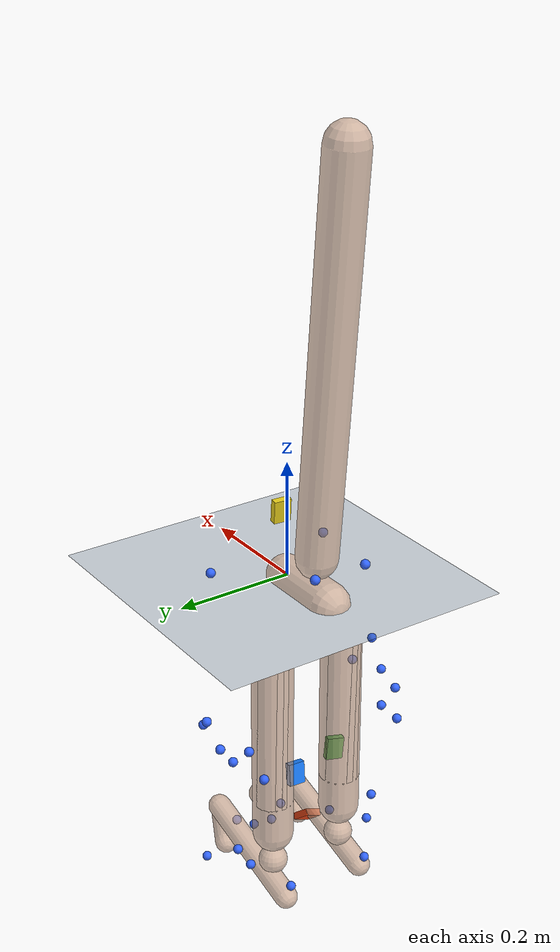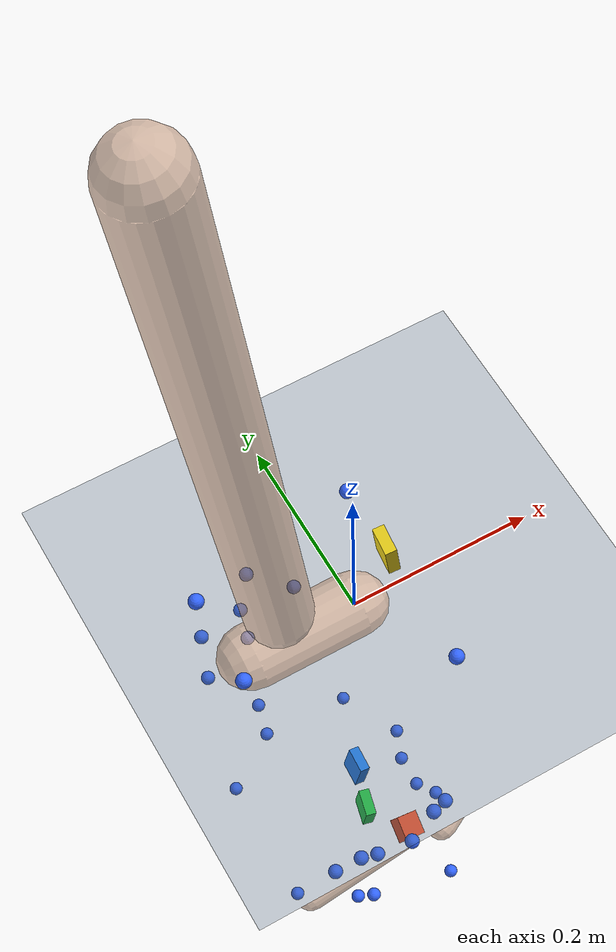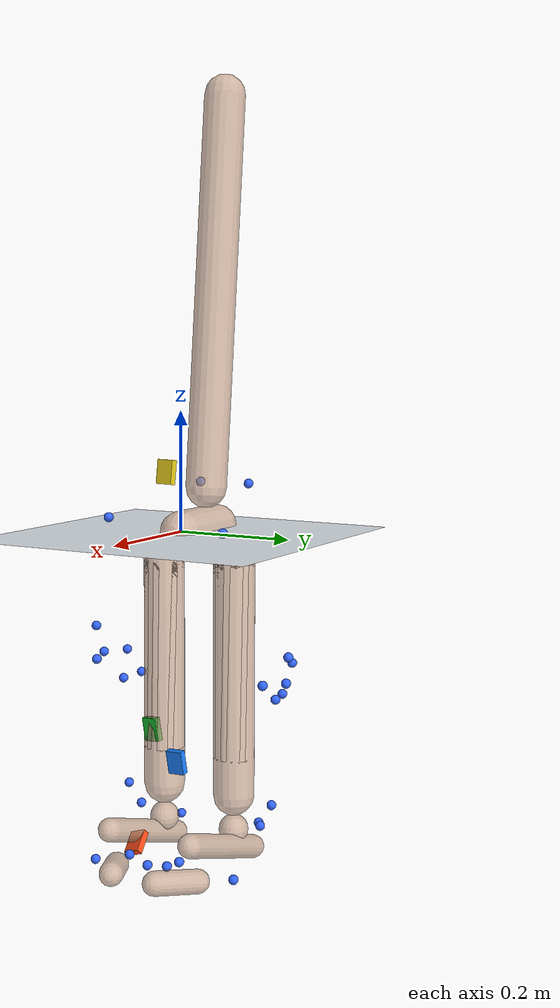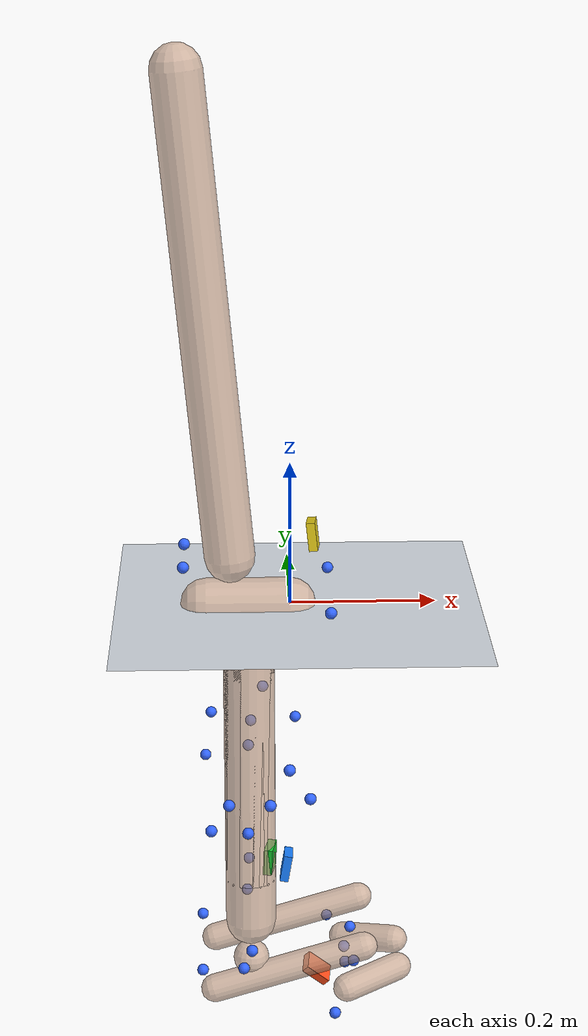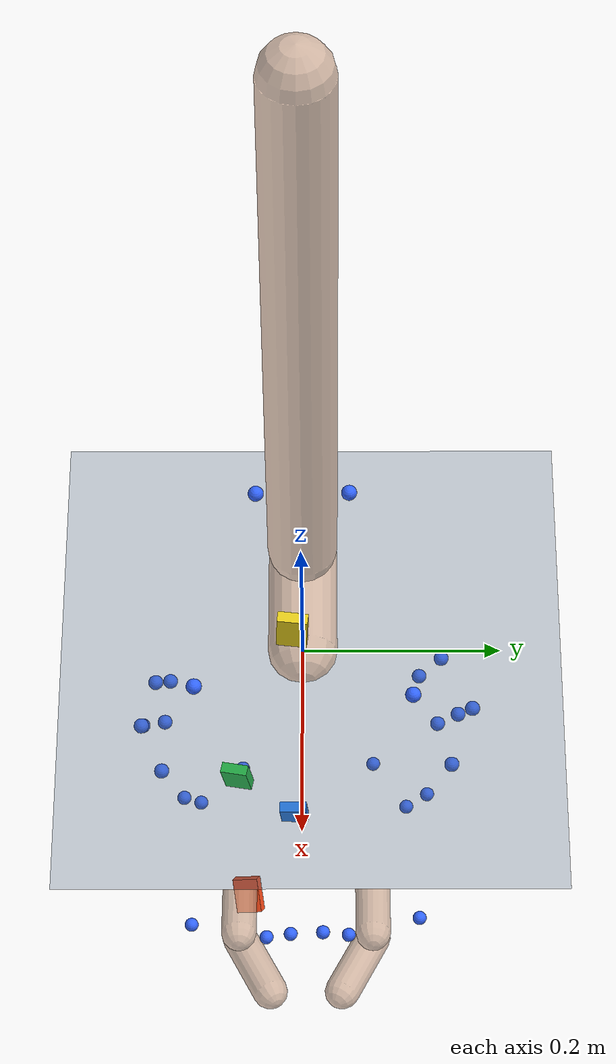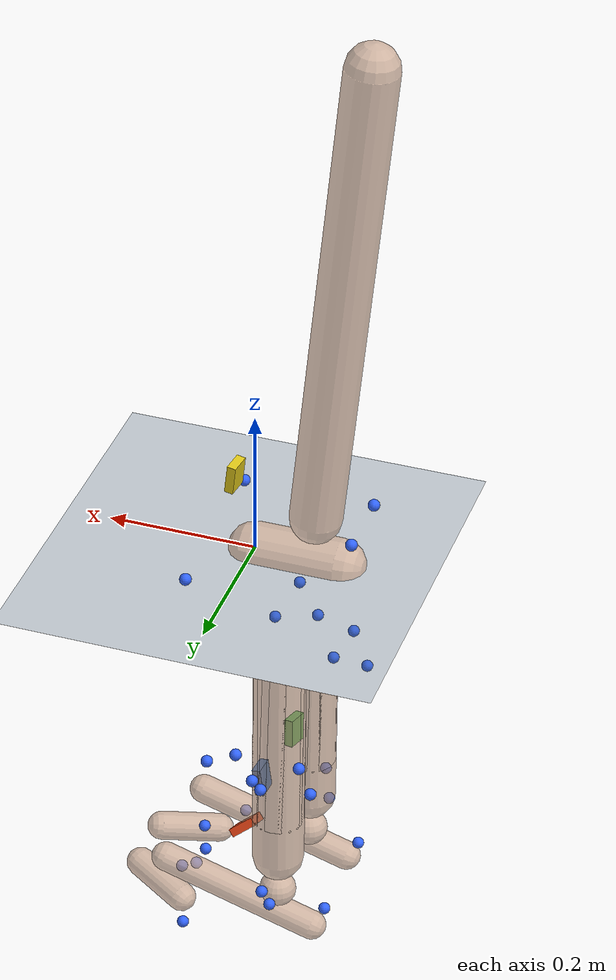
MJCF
<mujoco model="AB27">
  <compiler angle="radian" autolimits="true"/>
  <option timestep="0.005" gravity="0 0 -9.81"><flag contact="disable"/></option>
  <visual><global offwidth="1280" offheight="720"/></visual>
  <default><joint limited="false" damping="0"/><geom contype="0" conaffinity="0"/></default>
  <asset>
    <texture name="grid" type="2d" builtin="checker" rgb1="0.2 0.3 0.4" rgb2="0.3 0.4 0.5" width="512" height="512"/>
    <material name="grid" texture="grid" texrepeat="2 2" texuniform="true"/>
    <material name="skin" rgba="0.8 0.65 0.55 0.7"/>
  </asset>
  <worldbody>
    <light pos="0 0 4" dir="0 0 -1"/>
    <geom name="floor" type="plane" size="0 0 0.05" material="grid"/>
    <body name="pelvis" pos="0 0 0" quat="1 0 0 0">
      <joint name="pelvis_tx" type="slide" axis="1 0 0"/>
      <joint name="pelvis_ty" type="slide" axis="0 0 1"/>
      <joint name="pelvis_tz" type="slide" axis="0 -1 0"/>
      <joint name="pelvis_tilt" type="hinge" axis="0 -1 0"/>
      <joint name="pelvis_list" type="hinge" axis="1 0 0"/>
      <joint name="pelvis_rotation" type="hinge" axis="0 0 1"/>
      <inertial pos="-0.058046514 0 0" mass="11.385" diaginertia="0.11385026 0.11385026 0.11385026"/>
      <geom type="capsule" fromto="0 0 0 -0.11609303 0 0" size="0.035" material="skin" mass="0"/>
      <site name="m_R_ASIS" pos="0.052128746 -0.10849604 0.023263242" size="0.008" rgba="0.2 0.4 1 1" group="2"/>
      <site name="m_L_ASIS" pos="0.055594639 0.11089393 0.011455471" size="0.008" rgba="0.2 0.4 1 1" group="2"/>
      <site name="m_L_PSIS" pos="-0.1456863 0.047470997 0.070045221" size="0.008" rgba="0.2 0.4 1 1" group="2"/>
      <site name="m_R_PSIS" pos="-0.14553334 -0.047669934 0.068743078" size="0.008" rgba="0.2 0.4 1 1" group="2"/>
      <body name="femur_r" pos="-0.058046514 -0.068555643 -0.054269796" quat="1 0 0 0">
        <joint name="hip_flexion_r" type="hinge" axis="0 -1 0"/>
        <joint name="hip_adduction_r" type="hinge" axis="1 0 0"/>
        <joint name="hip_rotation_r" type="hinge" axis="0 0 1"/>
        <inertial pos="0 0 -0.16503786" mass="8.99182" diaginertia="0.08991821 0.08991821 0.08991821"/>
        <geom type="capsule" fromto="0 0 0 0 0 -0.33007572" size="0.035" material="skin" mass="0"/>
        <site name="m_R_Thigh_Upper" pos="0.052900902 -0.10512883 -0.12094729" size="0.008" rgba="0.2 0.4 1 1" group="2"/>
        <site name="m_R_Thigh_Front" pos="0.081215461 -0.085263008 -0.17224676" size="0.008" rgba="0.2 0.4 1 1" group="2"/>
        <site name="m_R_Thigh_Rear" pos="0.026873185 -0.10703871 -0.17157331" size="0.008" rgba="0.2 0.4 1 1" group="2"/>
        <site name="m_R_Knee_Lat" pos="0.00083167959 -0.072767124 -0.40669497" size="0.008" rgba="0.2 0.4 1 1" group="2"/>
        <site name="imu_thigh" type="box" size="0.02 0.015 0.006" pos="0.051366134 0.055490459 -0.33833025" quat="0.64665792 0.03322639 0.7620542 0.0017110722" rgba="0.1 0.5 1 1" group="1"/>
        <body name="tibia_r" pos="0 0 0" quat="1 0 0 0">
          <joint name="knee_r_translation1" type="slide" axis="1 0 0"/>
          <joint name="knee_r_translation2" type="slide" axis="0 0 1"/>
          <joint name="knee_angle_r" type="hinge" axis="0 -1 0"/>
          <inertial pos="0 0 -0.19744877" mass="3.5841" diaginertia="0.035841031 0.035841031 0.035841031"/>
          <geom type="capsule" fromto="0 0 0 0 0 -0.39489754" size="0.035" material="skin" mass="0"/>
          <site name="m_R_Shank_Upper" pos="-0.028618852 -0.094809408 -0.17610498" size="0.008" rgba="0.2 0.4 1 1" group="2"/>
          <site name="m_R_Shank_Front" pos="-0.0031336685 -0.086145252 -0.22174559" size="0.008" rgba="0.2 0.4 1 1" group="2"/>
          <site name="m_R_Shank_Rear" pos="-0.053094801 -0.081168583 -0.21976924" size="0.008" rgba="0.2 0.4 1 1" group="2"/>
          <site name="m_R_Ankle_Lat" pos="-0.010603552 -0.054767977 -0.44354602" size="0.008" rgba="0.2 0.4 1 1" group="2"/>
          <site name="imu_shank" type="box" size="0.02 0.015 0.006" pos="0.02693765 -0.0081978667 -0.29577261" quat="0.68173071 0.12351386 0.72034694 -0.032982783" rgba="0.1 0.8 0.2 1" group="1"/>
          <body name="talus_r" pos="0 0 -0.45475614" quat="1 0 0 0">
            <joint name="ankle_angle_r" type="hinge" axis="-0.10501355 -0.97912632 -0.17402245"/>
            <inertial pos="0 0 0" mass="0.0966717" diaginertia="0.00096671695 0.00096671695 0.00096671695"/>
            <geom type="sphere" size="0.025" material="skin" mass="0"/>
            <body name="calcn_r" pos="-0.051577807 -0.0083759736 -0.044365163" quat="1 0 0 0">
              <joint name="subtalar_angle_r" type="hinge" axis="0.78717961 0.12094949 0.60474746"/>
              <inertial pos="0.10493328 0 0.031479985" mass="1.2084" diaginertia="0.012083962 0.012083962 0.012083962"/>
              <geom type="capsule" fromto="0 0 0 0.20986657 0 0.062959971" size="0.02" material="skin" mass="0"/>
              <site name="m_R_Heel" pos="-0.017096098 0.0011897061 0.028407868" size="0.008" rgba="0.2 0.4 1 1" group="2"/>
              <site name="m_R_Toe_Lat" pos="0.16787386 -0.057761168 -0.010151365" size="0.008" rgba="0.2 0.4 1 1" group="2"/>
              <site name="m_R_Toe_Med" pos="0.18675358 0.058579294 0.0064987863" size="0.008" rgba="0.2 0.4 1 1" group="2"/>
              <site name="m_R_Toe_Tip" pos="0.19784758 0.030826674 0.023150082" size="0.008" rgba="0.2 0.4 1 1" group="2"/>
              <site name="imu_foot" type="box" size="0.02 0.015 0.006" pos="0.14404446 0.0095788388 0.023384951" quat="0.92124107 0.16916237 0.35018449 0.0083554046" rgba="1 0.3 0.1 1" group="1"/>
              <body name="toes_r" pos="0.18762071 -0.0011332795 -0.0020986657" quat="1 0 0 0">
                <joint name="mtp_angle_r" type="hinge" axis="-0.5809544 -0.81393611 0"/>
                <inertial pos="0.036306916 0.018363325 0.0062959971" mass="0.209391" diaginertia="0.0020939089 0.0020939089 0.0020939089"/>
                <geom type="capsule" fromto="0 0 0 0.072613833 0.03672665 0.012591994" size="0.02" material="skin" mass="0"/>
              </body>
            </body>
          </body>
        </body>
      </body>
      <body name="femur_l" pos="-0.058046514 0.068555643 -0.054269796" quat="1 0 0 0">
        <joint name="hip_flexion_l" type="hinge" axis="0 -1 0"/>
        <joint name="hip_adduction_l" type="hinge" axis="-1 0 0"/>
        <joint name="hip_rotation_l" type="hinge" axis="0 0 -1"/>
        <inertial pos="0 0 -0.16503786" mass="8.99182" diaginertia="0.08991821 0.08991821 0.08991821"/>
        <geom type="capsule" fromto="0 0 0 0 0 -0.33007572" size="0.035" material="skin" mass="0"/>
        <site name="m_L_Thigh_Upper" pos="0.021092888 0.11288699 -0.14325795" size="0.008" rgba="0.2 0.4 1 1" group="2"/>
        <site name="m_L_Thigh_Front" pos="0.068513846 0.091036969 -0.183141" size="0.008" rgba="0.2 0.4 1 1" group="2"/>
        <site name="m_L_Thigh_Rear" pos="0.0030222491 0.099667947 -0.19187895" size="0.008" rgba="0.2 0.4 1 1" group="2"/>
        <site name="m_L_Knee_Lat" pos="-0.001218152 0.071698705 -0.40245988" size="0.008" rgba="0.2 0.4 1 1" group="2"/>
        <body name="tibia_l" pos="0 0 0" quat="1 0 0 0">
          <joint name="knee_l_translation1" type="slide" axis="1 0 0"/>
          <joint name="knee_l_translation2" type="slide" axis="0 0 1"/>
          <joint name="knee_angle_l" type="hinge" axis="0 -1 0"/>
          <inertial pos="0 0 -0.19744877" mass="3.5841" diaginertia="0.035841031 0.035841031 0.035841031"/>
          <geom type="capsule" fromto="0 0 0 0 0 -0.39489754" size="0.035" material="skin" mass="0"/>
          <site name="m_L_Shank_Upper" pos="-0.054818248 0.081511764 -0.17033796" size="0.008" rgba="0.2 0.4 1 1" group="2"/>
          <site name="m_L_Shank_Front" pos="-0.0010183191 0.078244688 -0.22235564" size="0.008" rgba="0.2 0.4 1 1" group="2"/>
          <site name="m_L_Shank_Rear" pos="-0.06348825 0.05895013 -0.22809607" size="0.008" rgba="0.2 0.4 1 1" group="2"/>
          <site name="m_L_Ankle_Lat" pos="-0.00441784 0.048607869 -0.4427429" size="0.008" rgba="0.2 0.4 1 1" group="2"/>
          <body name="talus_l" pos="0 0 -0.45475614" quat="1 0 0 0">
            <joint name="ankle_angle_l" type="hinge" axis="0.10501355 -0.97912632 0.17402245"/>
            <inertial pos="0 0 0" mass="0.0966717" diaginertia="0.00096671695 0.00096671695 0.00096671695"/>
            <geom type="sphere" size="0.025" material="skin" mass="0"/>
            <body name="calcn_l" pos="-0.051577807 0.0083759736 -0.044365163" quat="1 0 0 0">
              <joint name="subtalar_angle_l" type="hinge" axis="-0.78717961 0.12094949 -0.60474746"/>
              <inertial pos="0.10493328 0 0.031479985" mass="1.2084" diaginertia="0.012083962 0.012083962 0.012083962"/>
              <geom type="capsule" fromto="0 0 0 0.20986657 0 0.062959971" size="0.02" material="skin" mass="0"/>
              <site name="m_L_Heel" pos="-0.018492237 0.0022820075 0.036842744" size="0.008" rgba="0.2 0.4 1 1" group="2"/>
              <site name="m_L_Toe_Lat" pos="0.16575562 0.055329829 0.0037705837" size="0.008" rgba="0.2 0.4 1 1" group="2"/>
              <site name="m_L_Toe_Med" pos="0.18685467 -0.057553827 0.011467707" size="0.008" rgba="0.2 0.4 1 1" group="2"/>
              <site name="m_L_Toe_Tip" pos="0.19700497 -0.02777047 0.027535185" size="0.008" rgba="0.2 0.4 1 1" group="2"/>
              <body name="toes_l" pos="0.18762071 0.0011332795 -0.0020986657" quat="1 0 0 0">
                <joint name="mtp_angle_l" type="hinge" axis="0.5809544 -0.81393611 0"/>
                <inertial pos="0.036306916 -0.018363325 0.0062959971" mass="0.209391" diaginertia="0.0020939089 0.0020939089 0.0020939089"/>
                <geom type="capsule" fromto="0 0 0 0.072613833 -0.03672665 0.012591994" size="0.02" material="skin" mass="0"/>
              </body>
            </body>
          </body>
        </body>
      </body>
      <body name="torso" pos="-0.082677284 0 0.066913591" quat="1 0 0 0">
        <joint name="lumbar_extension" type="hinge" axis="0 -1 0"/>
        <joint name="lumbar_bending" type="hinge" axis="1 0 0"/>
        <joint name="lumbar_rotation" type="hinge" axis="0 0 1"/>
        <inertial pos="-0.030928401 0 0.32990294" mass="33.0971" diaginertia="0.33097101 0.33097101 0.33097101"/>
        <geom type="capsule" fromto="0 0 0 -0.061856801 0 0.65980588" size="0.035" material="skin" mass="0"/>
        <site name="imu_trunk" type="box" size="0.02 0.015 0.006" pos="0.11337166 -0.0092703302 0.034709302" quat="0.7441197 0.032156112 0.66574872 -0.045061202" rgba="0.9 0.8 0.1 1" group="1"/>
      </body>
    </body>
  </worldbody>
  <sensor>
<accelerometer name="imu_foot_acc" site="imu_foot"/>
<gyro name="imu_foot_gyr" site="imu_foot"/>
<accelerometer name="imu_shank_acc" site="imu_shank"/>
<gyro name="imu_shank_gyr" site="imu_shank"/>
<accelerometer name="imu_thigh_acc" site="imu_thigh"/>
<gyro name="imu_thigh_gyr" site="imu_thigh"/>
<accelerometer name="imu_trunk_acc" site="imu_trunk"/>
<gyro name="imu_trunk_gyr" site="imu_trunk"/>
</sensor>
</mujoco>
